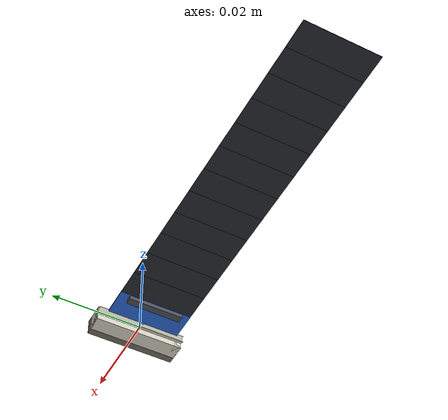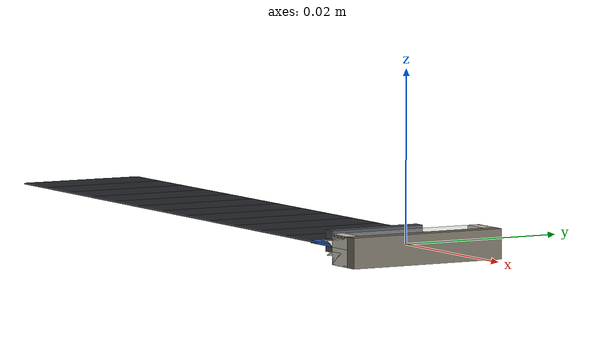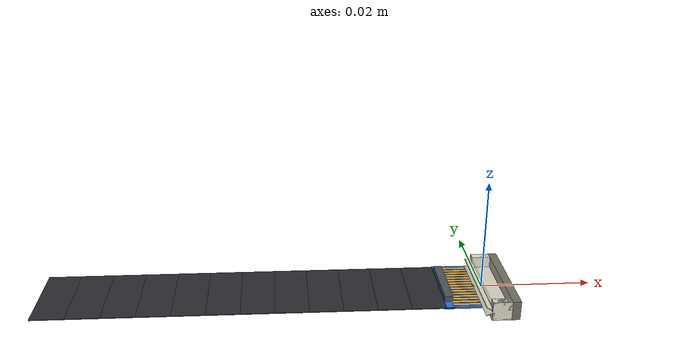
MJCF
<mujoco model="ffc_twin_v0.2.0">
  <option timestep="0.001" gravity="9.81 0.0 0.0" integrator="implicitfast" cone="elliptic" impratio="10" noslip_iterations="2"/>
  <default>
    <geom condim="4" friction="0.4 0.005 0.0001" solref="0.0005 1" solimp="0.95 0.99 0.0005 0.5 2" margin="2e-05"/>
  </default>
  <worldbody>
    <!-- Connector frame C: mouth at the origin, +x into the slot, +y across the cable, +z cable normal -->
    <body name="connector" pos="0 0 0">
      <geom name="wall_l" type="box" pos="0.00172500 0.00895000 0" size="0.00172500 0.00075000 0.00175450" rgba="0.86 0.84 0.78 1"/>
      <geom name="wall_r" type="box" pos="0.00172500 -0.00895000 0" size="0.00172500 0.00075000 0.00175450" rgba="0.86 0.84 0.78 1"/>
      <geom name="roof" type="box" pos="0.00172500 0 0.00100450" size="0.00172500 0.00970000 0.00075000" rgba="0.86 0.84 0.78 0.35"/>
      <geom name="floor" type="box" pos="0.00172500 0 -0.00100450" size="0.00172500 0.00970000 0.00075000" rgba="0.86 0.84 0.78 1"/>
      <geom name="backstop" type="box" pos="0.00420000 0 0" size="0.00075000 0.00970000 0.00175450" rgba="0.45 0.43 0.38 1"/>
      <geom name="leadin_top" type="box" pos="-0.00052265 0 0.00055339" euler="0 25.00 0" size="0.00060000 0.00970000 0.00005000" rgba="0.86 0.84 0.78 1"/>
      <geom name="leadin_bottom" type="box" pos="-0.00052265 0 -0.00055339" euler="0 -25.00 0" size="0.00060000 0.00970000 0.00005000" rgba="0.86 0.84 0.78 1"/>

    </body>
    <!-- Tool: six joints standing in for a Cartesian impedance controller; jaws clamp the support tape -->
    <body name="tool" pos="-0.00705000 0 0">
      <joint name="tx" type="slide" axis="1 0 0"/><joint name="ty" type="slide" axis="0 1 0"/><joint name="tz" type="slide" axis="0 0 1"/>
      <joint name="rx" type="hinge" axis="1 0 0"/><joint name="ry" type="hinge" axis="0 1 0"/><joint name="rz" type="hinge" axis="0 0 1"/>
      <geom name="jaw_top" type="box" pos="0 0 0.00075450" size="0.00075000 0.006 0.0005" mass="0.0005" rgba="0.30 0.32 0.36 1" contype="0" conaffinity="0"/>
      <geom name="jaw_bottom" type="box" pos="0 0 -0.00075450" size="0.00075000 0.006 0.0005" mass="0.0005" rgba="0.30 0.32 0.36 1" contype="0" conaffinity="0"/>
      <!-- gripped film segment: may slide along the cable axis against dry friction = 2 mu N (the grasp model) -->
      <body name="gripped" pos="0 0 0">
        <joint name="grip_slip" type="slide" axis="1 0 0" frictionloss="2.400000" damping="0.5" armature="0.001" solreffriction="0.002 1" solimpfriction="0.99 0.999 0.0001 0.5 2" limited="true" range="-0.001500 0.001500"/>
        <geom name="film_in_jaws" type="box" size="0.00075000 0.00800000 0.00006850" mass="7.4550e-06" rgba="0.16 0.17 0.19 1" contype="0" conaffinity="0"/>
        <body name="header" pos="0.00240000 0 0">
            <geom name="hdr" type="box" size="0.00315000 0.00800000 0.00015450" mass="6.2622e-05" rgba="0.18 0.42 0.85 1" contype="5" conaffinity="1"/>
            <geom type="box" pos="0.00065000 -0.00700000 0.00017450" size="0.00250000 0.000350 0.00002" rgba="0.85 0.66 0.25 1" contype="0" conaffinity="0"/><geom type="box" pos="0.00065000 -0.00600000 0.00017450" size="0.00250000 0.000350 0.00002" rgba="0.85 0.66 0.25 1" contype="0" conaffinity="0"/><geom type="box" pos="0.00065000 -0.00500000 0.00017450" size="0.00250000 0.000350 0.00002" rgba="0.85 0.66 0.25 1" contype="0" conaffinity="0"/><geom type="box" pos="0.00065000 -0.00400000 0.00017450" size="0.00250000 0.000350 0.00002" rgba="0.85 0.66 0.25 1" contype="0" conaffinity="0"/><geom type="box" pos="0.00065000 -0.00300000 0.00017450" size="0.00250000 0.000350 0.00002" rgba="0.85 0.66 0.25 1" contype="0" conaffinity="0"/><geom type="box" pos="0.00065000 -0.00200000 0.00017450" size="0.00250000 0.000350 0.00002" rgba="0.85 0.66 0.25 1" contype="0" conaffinity="0"/><geom type="box" pos="0.00065000 -0.00100000 0.00017450" size="0.00250000 0.000350 0.00002" rgba="0.85 0.66 0.25 1" contype="0" conaffinity="0"/><geom type="box" pos="0.00065000 0.00000000 0.00017450" size="0.00250000 0.000350 0.00002" rgba="0.85 0.66 0.25 1" contype="0" conaffinity="0"/><geom type="box" pos="0.00065000 0.00100000 0.00017450" size="0.00250000 0.000350 0.00002" rgba="0.85 0.66 0.25 1" contype="0" conaffinity="0"/><geom type="box" pos="0.00065000 0.00200000 0.00017450" size="0.00250000 0.000350 0.00002" rgba="0.85 0.66 0.25 1" contype="0" conaffinity="0"/><geom type="box" pos="0.00065000 0.00300000 0.00017450" size="0.00250000 0.000350 0.00002" rgba="0.85 0.66 0.25 1" contype="0" conaffinity="0"/><geom type="box" pos="0.00065000 0.00400000 0.00017450" size="0.00250000 0.000350 0.00002" rgba="0.85 0.66 0.25 1" contype="0" conaffinity="0"/><geom type="box" pos="0.00065000 0.00500000 0.00017450" size="0.00250000 0.000350 0.00002" rgba="0.85 0.66 0.25 1" contype="0" conaffinity="0"/><geom type="box" pos="0.00065000 0.00600000 0.00017450" size="0.00250000 0.000350 0.00002" rgba="0.85 0.66 0.25 1" contype="0" conaffinity="0"/><geom type="box" pos="0.00065000 0.00700000 0.00017450" size="0.00250000 0.000350 0.00002" rgba="0.85 0.66 0.25 1" contype="0" conaffinity="0"/>
            <site name="tip" pos="0.00315000 0 0" size="0.0003"/>
          </body>
        <!-- tail behind the jaws -->
        <body name="tailroot" pos="-0.00075000 0 0">
          <body name="tail0" pos="-0.00300000 0 0"><joint name="bend0" type="hinge" axis="0 1 0" stiffness="1.7142e-03" damping="3.4285e-05" armature="1e-9"/><joint name="twist0" type="hinge" axis="1 0 0" stiffness="2.6373e-03" damping="5.2746e-05" armature="1e-9"/><geom type="box" size="0.00300000 0.00800000 0.00006850" mass="2.9820e-05" rgba="0.16 0.17 0.19 1" contype="2" conaffinity="0"/><body name="tail1" pos="-0.00600000 0 0"><joint name="bend1" type="hinge" axis="0 1 0" stiffness="1.7142e-03" damping="3.4285e-05" armature="1e-9"/><joint name="twist1" type="hinge" axis="1 0 0" stiffness="2.6373e-03" damping="5.2746e-05" armature="1e-9"/><geom type="box" size="0.00300000 0.00800000 0.00006850" mass="2.9820e-05" rgba="0.16 0.17 0.19 1" contype="2" conaffinity="0"/><body name="tail2" pos="-0.00600000 0 0"><joint name="bend2" type="hinge" axis="0 1 0" stiffness="1.7142e-03" damping="3.4285e-05" armature="1e-9"/><joint name="twist2" type="hinge" axis="1 0 0" stiffness="2.6373e-03" damping="5.2746e-05" armature="1e-9"/><geom type="box" size="0.00300000 0.00800000 0.00006850" mass="2.9820e-05" rgba="0.16 0.17 0.19 1" contype="2" conaffinity="0"/><body name="tail3" pos="-0.00600000 0 0"><joint name="bend3" type="hinge" axis="0 1 0" stiffness="1.7142e-03" damping="3.4285e-05" armature="1e-9"/><joint name="twist3" type="hinge" axis="1 0 0" stiffness="2.6373e-03" damping="5.2746e-05" armature="1e-9"/><geom type="box" size="0.00300000 0.00800000 0.00006850" mass="2.9820e-05" rgba="0.16 0.17 0.19 1" contype="2" conaffinity="0"/><body name="tail4" pos="-0.00600000 0 0"><joint name="bend4" type="hinge" axis="0 1 0" stiffness="1.7142e-03" damping="3.4285e-05" armature="1e-9"/><joint name="twist4" type="hinge" axis="1 0 0" stiffness="2.6373e-03" damping="5.2746e-05" armature="1e-9"/><geom type="box" size="0.00300000 0.00800000 0.00006850" mass="2.9820e-05" rgba="0.16 0.17 0.19 1" contype="2" conaffinity="0"/><body name="tail5" pos="-0.00600000 0 0"><joint name="bend5" type="hinge" axis="0 1 0" stiffness="1.7142e-03" damping="3.4285e-05" armature="1e-9"/><joint name="twist5" type="hinge" axis="1 0 0" stiffness="2.6373e-03" damping="5.2746e-05" armature="1e-9"/><geom type="box" size="0.00300000 0.00800000 0.00006850" mass="2.9820e-05" rgba="0.16 0.17 0.19 1" contype="2" conaffinity="0"/><body name="tail6" pos="-0.00600000 0 0"><joint name="bend6" type="hinge" axis="0 1 0" stiffness="1.7142e-03" damping="3.4285e-05" armature="1e-9"/><joint name="twist6" type="hinge" axis="1 0 0" stiffness="2.6373e-03" damping="5.2746e-05" armature="1e-9"/><geom type="box" size="0.00300000 0.00800000 0.00006850" mass="2.9820e-05" rgba="0.16 0.17 0.19 1" contype="2" conaffinity="0"/><body name="tail7" pos="-0.00600000 0 0"><joint name="bend7" type="hinge" axis="0 1 0" stiffness="1.7142e-03" damping="3.4285e-05" armature="1e-9"/><joint name="twist7" type="hinge" axis="1 0 0" stiffness="2.6373e-03" damping="5.2746e-05" armature="1e-9"/><geom type="box" size="0.00300000 0.00800000 0.00006850" mass="2.9820e-05" rgba="0.16 0.17 0.19 1" contype="2" conaffinity="0"/><body name="tail8" pos="-0.00600000 0 0"><joint name="bend8" type="hinge" axis="0 1 0" stiffness="1.7142e-03" damping="3.4285e-05" armature="1e-9"/><joint name="twist8" type="hinge" axis="1 0 0" stiffness="2.6373e-03" damping="5.2746e-05" armature="1e-9"/><geom type="box" size="0.00300000 0.00800000 0.00006850" mass="2.9820e-05" rgba="0.16 0.17 0.19 1" contype="2" conaffinity="0"/><body name="tail9" pos="-0.00600000 0 0"><joint name="bend9" type="hinge" axis="0 1 0" stiffness="1.7142e-03" damping="3.4285e-05" armature="1e-9"/><joint name="twist9" type="hinge" axis="1 0 0" stiffness="2.6373e-03" damping="5.2746e-05" armature="1e-9"/><geom type="box" size="0.00300000 0.00800000 0.00006850" mass="2.9820e-05" rgba="0.16 0.17 0.19 1" contype="2" conaffinity="0"/><body name="tail10" pos="-0.00600000 0 0"><joint name="bend10" type="hinge" axis="0 1 0" stiffness="1.7142e-03" damping="3.4285e-05" armature="1e-9"/><joint name="twist10" type="hinge" axis="1 0 0" stiffness="2.6373e-03" damping="5.2746e-05" armature="1e-9"/><geom type="box" size="0.00300000 0.00800000 0.00006850" mass="2.9820e-05" rgba="0.16 0.17 0.19 1" contype="2" conaffinity="0"/><body name="tail11" pos="-0.00600000 0 0"><joint name="bend11" type="hinge" axis="0 1 0" stiffness="1.7142e-03" damping="3.4285e-05" armature="1e-9"/><joint name="twist11" type="hinge" axis="1 0 0" stiffness="2.6373e-03" damping="5.2746e-05" armature="1e-9"/><geom type="box" size="0.00300000 0.00800000 0.00006850" mass="2.9820e-05" rgba="0.16 0.17 0.19 1" contype="2" conaffinity="0"/></body></body></body></body></body></body></body></body></body></body></body></body>
        </body>
      </body>
    </body>
  </worldbody>
  <actuator>
    <position joint="tx" kp="2000.0" kv="40.0"/><position joint="ty" kp="2000.0" kv="40.0"/><position joint="tz" kp="2000.0" kv="40.0"/>
    <position joint="rx" kp="2.0" kv="0.05"/><position joint="ry" kp="2.0" kv="0.05"/><position joint="rz" kp="2.0" kv="0.05"/>
  </actuator>
  <sensor><force name="tip_force" site="tip"/><torque name="tip_torque" site="tip"/></sensor>
</mujoco>
